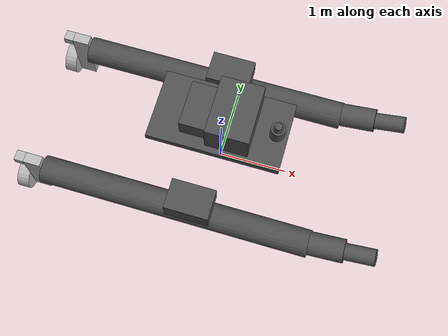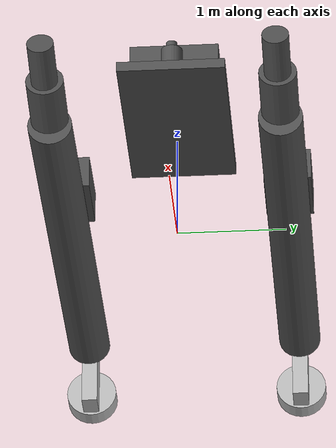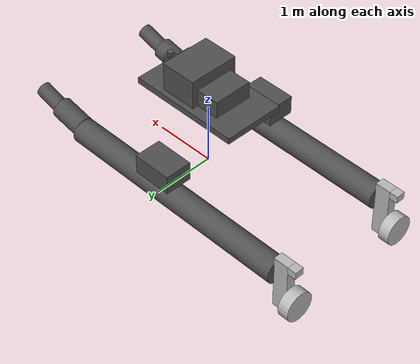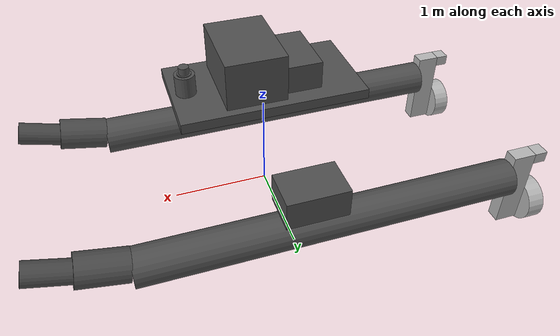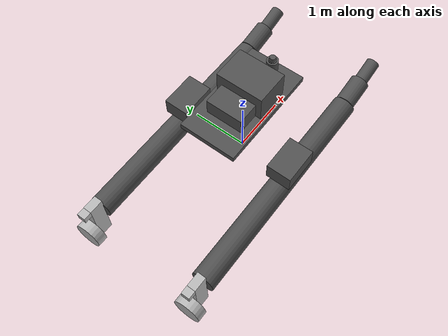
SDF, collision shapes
<sdf version='1.11'>
  <model name='wamv'>
    <link name='base_footprint'>
      <inertial>
        <pose>-0.010332621914388119 0 0.24583324608384011 0 0 0</pose>
        <mass>248.33000000000001</mass>
        <inertia>
          <ixx>224.52717583472031</ixx>
          <ixy>0</ixy>
          <ixz>-3.2359464261265258</ixz>
          <iyy>451.38310669015033</iyy>
          <iyz>0</iyz>
          <izz>502.93825152542979</izz>
        </inertia>
      </inertial>
      <collision name='base_footprint_fixed_joint_lump__base_link_collision'>
        <pose>0 0 1.25 0 0 0</pose>
        <geometry>
          <box>
            <size>1.8500000000000001 1 0.10000000000000001</size>
          </box>
        </geometry>
      </collision>
      <collision name='base_footprint_fixed_joint_lump__base_link_collision_1'>
        <pose>-0.40000000000000002 1.03 0.20000000000000001 0 1.5707963267948966 0</pose>
        <geometry>
          <cylinder>
            <length>4</length>
            <radius>0.20000000000000001</radius>
          </cylinder>
        </geometry>
      </collision>
      <collision name='base_footprint_fixed_joint_lump__base_link_collision_2'>
        <pose>1.8500000000000001 1.03 0.29999999999999999 0 1.3799999999999997 0</pose>
        <geometry>
          <cylinder>
            <length>0.5</length>
            <radius>0.17000000000000001</radius>
          </cylinder>
        </geometry>
      </collision>
      <collision name='base_footprint_fixed_joint_lump__base_link_collision_3'>
        <pose>2.2999999999999998 1.03 0.40000000000000002 0 1.3 0</pose>
        <geometry>
          <cylinder>
            <length>0.45000000000000001</length>
            <radius>0.12</radius>
          </cylinder>
        </geometry>
      </collision>
      <collision name='base_footprint_fixed_joint_lump__base_link_collision_4'>
        <pose>-0.40000000000000002 -1.03 0.20000000000000001 0 1.5707963267948966 0</pose>
        <geometry>
          <cylinder>
            <length>4</length>
            <radius>0.20000000000000001</radius>
          </cylinder>
        </geometry>
      </collision>
      <collision name='base_footprint_fixed_joint_lump__base_link_collision_5'>
        <pose>1.8500000000000001 -1.03 0.29999999999999999 0 1.3799999999999997 0</pose>
        <geometry>
          <cylinder>
            <length>0.5</length>
            <radius>0.17000000000000001</radius>
          </cylinder>
        </geometry>
      </collision>
      <collision name='base_footprint_fixed_joint_lump__base_link_collision_6'>
        <pose>2.2999999999999998 -1.03 0.40000000000000002 0 1.3 0</pose>
        <geometry>
          <cylinder>
            <length>0.45000000000000001</length>
            <radius>0.12</radius>
          </cylinder>
        </geometry>
      </collision>
      <collision name='base_footprint_fixed_joint_lump__battery_dx_link_collision_7'>
        <pose>-0.14999999999999999 -1.0289999999999999 0.60299999999999998 0 0 0</pose>
        <geometry>
          <box>
            <size>0.64000000000000001 0.44 0.31</size>
          </box>
        </geometry>
      </collision>
      <collision name='base_footprint_fixed_joint_lump__battery_sx_link_collision_8'>
        <pose>-0.14999999999999999 1.0289999999999999 0.60299999999999998 0 0 0</pose>
        <geometry>
          <box>
            <size>0.64000000000000001 0.44 0.31</size>
          </box>
        </geometry>
      </collision>
      <collision name='base_footprint_fixed_joint_lump__cpu_cases_link_collision_9'>
        <pose>0.17299999999999999 0 1.5349999999999999 0 0 0</pose>
        <geometry>
          <box>
            <size>0.59499999999999997 0.82999999999999996 0.46999999999999997</size>
          </box>
        </geometry>
        <surface>
          <contact>
            <ode/>
          </contact>
          <friction>
            <ode/>
          </friction>
        </surface>
      </collision>
      <collision name='base_footprint_fixed_joint_lump__cpu_cases_link_collision_10'>
        <pose>-0.314 0 1.4399999999999999 0 0 0</pose>
        <geometry>
          <box>
            <size>0.375 0.64000000000000001 0.28000000000000003</size>
          </box>
        </geometry>
        <surface>
          <contact>
            <ode/>
          </contact>
          <friction>
            <ode/>
          </friction>
        </surface>
      </collision>
      <collision name='base_footprint_fixed_joint_lump__tripod_legs_collision_collision_11'>
        <pose>0.77000000000000002 0 1.3999999999999999 0 0 0</pose>
        <geometry>
          <cylinder>
            <length>0.218</length>
            <radius>0.10000000000000001</radius>
          </cylinder>
        </geometry>
      </collision>
      <collision name='base_footprint_fixed_joint_lump__tripod_ring_collision_collision_12'>
        <pose>0.77000000000000002 0 1.5129999999999999 0 0 0</pose>
        <geometry>
          <cylinder>
            <length>0.01</length>
            <radius>0.068000000000000005</radius>
          </cylinder>
        </geometry>
      </collision>
      <collision name='base_footprint_fixed_joint_lump__lidar_collision_collision_13'>
        <pose>0.77000000000000002 0 1.554 0 0 0</pose>
        <geometry>
          <cylinder>
            <length>0.071999999999999995</length>
            <radius>0.051499999999999997</radius>
          </cylinder>
        </geometry>
      </collision>
      <visual name='base_footprint_fixed_joint_lump__base_link_visual'>
        <pose>0 0 0 0 0 0</pose>
        <geometry>
          <mesh>
            <scale>1 1 1</scale>
            <uri>model://wamv_gazebo/models/wam-v/meshes/WAM-V-Base.dae</uri>
          </mesh>
        </geometry>
      </visual>
      <visual name='base_footprint_fixed_joint_lump__battery_dx_link_visual_1'>
        <pose>-0.13 -1.0289999999999999 0.44800000000000001 0 0 0</pose>
        <geometry>
          <mesh>
            <scale>1 1 1</scale>
            <uri>model://wamv_gazebo/models/wam-v/meshes/battery.dae</uri>
          </mesh>
        </geometry>
      </visual>
      <visual name='base_footprint_fixed_joint_lump__battery_sx_link_visual_2'>
        <pose>-0.13 1.0289999999999999 0.44800000000000001 0 0 0</pose>
        <geometry>
          <mesh>
            <scale>1 1 1</scale>
            <uri>model://wamv_gazebo/models/wam-v/meshes/battery.dae</uri>
          </mesh>
        </geometry>
      </visual>
      <visual name='base_footprint_fixed_joint_lump__cpu_cases_link_visual_3'>
        <pose>0.072999999999999995 0 1.3 0 0 0</pose>
        <geometry>
          <mesh>
            <scale>1 1 1</scale>
            <uri>model://wamv_gazebo/models/wam-v/meshes/cpu_cases.dae</uri>
          </mesh>
        </geometry>
      </visual>
      <visual name='base_footprint_fixed_joint_lump__tripod_legs_visual_visual_4'>
        <pose>0.77000000000000002 0 1.29 0 0 0</pose>
        <geometry>
          <mesh>
            <scale>1 1 1</scale>
            <uri>model://wamv_gazebo/models/wam-v/meshes/legs.dae</uri>
          </mesh>
        </geometry>
        <material>
          <diffuse>0.3125 0.3125 0.3125 1</diffuse>
          <ambient>0.3125 0.3125 0.3125 1</ambient>
        </material>
      </visual>
      <visual name='base_footprint_fixed_joint_lump__tripod_ring_visual_visual_5'>
        <pose>0.77000000000000002 0 1.508 0 0 0</pose>
        <geometry>
          <mesh>
            <scale>1 1 1</scale>
            <uri>model://wamv_gazebo/models/wam-v/meshes/ring.dae</uri>
          </mesh>
        </geometry>
        <material>
          <diffuse>0.81249994 0.81249994 0.875 1</diffuse>
          <ambient>0.81249994 0.81249994 0.875 1</ambient>
        </material>
      </visual>
      <visual name='base_footprint_fixed_joint_lump__lidar_visual_visual_6'>
        <pose>0.77000000000000002 0 1.518 0 0 0</pose>
        <geometry>
          <mesh>
            <scale>1 1 1</scale>
            <uri>model://wamv_gazebo/models/wam-v/meshes/lidar_3d_v1.dae</uri>
          </mesh>
        </geometry>
      </visual>
      <sensor name='imu_sensor' type='imu'>
        <update_rate>100</update_rate>
        <visualize>true</visualize>
        <topic>imu</topic>
        <imu>
          <angular_velocity>
            <x>
              <noise type='gaussian'>
                <mean>0</mean>
                <stddev>0.0089999999999999993</stddev>
                <bias_mean>0.00075000000000000002</bias_mean>
                <bias_stddev>0.0050000000000000001</bias_stddev>
                <dynamic_bias_stddev>2.0000000000000002e-05</dynamic_bias_stddev>
                <dynamic_bias_correlation_time>400</dynamic_bias_correlation_time>
                <precision>0.00025000000000000001</precision>
              </noise>
            </x>
            <y>
              <noise type='gaussian'>
                <mean>0</mean>
                <stddev>0.0089999999999999993</stddev>
                <bias_mean>0.00075000000000000002</bias_mean>
                <bias_stddev>0.0050000000000000001</bias_stddev>
                <dynamic_bias_stddev>2.0000000000000002e-05</dynamic_bias_stddev>
                <dynamic_bias_correlation_time>400</dynamic_bias_correlation_time>
                <precision>0.00025000000000000001</precision>
              </noise>
            </y>
            <z>
              <noise type='gaussian'>
                <mean>0</mean>
                <stddev>0.0089999999999999993</stddev>
                <bias_mean>0.00075000000000000002</bias_mean>
                <bias_stddev>0.0050000000000000001</bias_stddev>
                <dynamic_bias_stddev>2.0000000000000002e-05</dynamic_bias_stddev>
                <dynamic_bias_correlation_time>400</dynamic_bias_correlation_time>
                <precision>0.00025000000000000001</precision>
              </noise>
            </z>
          </angular_velocity>
          <linear_acceleration>
            <x>
              <noise type='gaussian'>
                <mean>0</mean>
                <stddev>0.021000000000000001</stddev>
                <bias_mean>0.050000000000000003</bias_mean>
                <bias_stddev>0.0074999999999999997</bias_stddev>
                <dynamic_bias_stddev>0.00037500000000000001</dynamic_bias_stddev>
                <dynamic_bias_correlation_time>175</dynamic_bias_correlation_time>
                <precision>0.0050000000000000001</precision>
              </noise>
            </x>
            <y>
              <noise type='gaussian'>
                <mean>0</mean>
                <stddev>0.021000000000000001</stddev>
                <bias_mean>0.050000000000000003</bias_mean>
                <bias_stddev>0.0074999999999999997</bias_stddev>
                <dynamic_bias_stddev>0.00037500000000000001</dynamic_bias_stddev>
                <dynamic_bias_correlation_time>175</dynamic_bias_correlation_time>
                <precision>0.0050000000000000001</precision>
              </noise>
            </y>
            <z>
              <noise type='gaussian'>
                <mean>0</mean>
                <stddev>0.021000000000000001</stddev>
                <bias_mean>0.050000000000000003</bias_mean>
                <bias_stddev>0.0074999999999999997</bias_stddev>
                <dynamic_bias_stddev>0.00037500000000000001</dynamic_bias_stddev>
                <dynamic_bias_correlation_time>175</dynamic_bias_correlation_time>
                <precision>0.0050000000000000001</precision>
              </noise>
            </z>
          </linear_acceleration>
        </imu>
        <pose>0.072999999999999995 0 1.3 0 0 0</pose>
      </sensor>
      <sensor name='gpu_lidar' type='gpu_lidar'>
        <update_rate>5</update_rate>
        <topic>scan</topic>
        <always_on>true</always_on>
        <visualize>true</visualize>
        <ray>
          <scan>
            <horizontal>
              <samples>640</samples>
              <resolution>1</resolution>
              <min_angle>-1.396263</min_angle>
              <max_angle>1.396263</max_angle>
            </horizontal>
            <vertical>
              <samples>16</samples>
              <resolution>1</resolution>
              <min_angle>-0.26179000000000002</min_angle>
              <max_angle>0.26179000000000002</max_angle>
            </vertical>
          </scan>
          <range>
            <min>0.10000000000000001</min>
            <max>30</max>
            <resolution>0.01</resolution>
          </range>
          <noise>
            <type>gaussian</type>
            <mean>0</mean>
            <stddev>0.01</stddev>
          </noise>
        </ray>
        <pose>0.77000000000000002 0 1.554 0 0.139626 0</pose>
      </sensor>
      <sensor name='gps_sensor' type='gps'>
        <always_on>true</always_on>
        <update_rate>1</update_rate>
        <visualize>true</visualize>
        <topic>fix</topic>
        <gps>
          <position_sensing>
            <horizontal>
              <noise type='gaussian'>
                <mean>0</mean>
                <stddev>9.9999999999999995e-07</stddev>
              </noise>
            </horizontal>
            <vertical>
              <noise type='gaussian'>
                <mean>0</mean>
                <stddev>9.9999999999999995e-07</stddev>
              </noise>
            </vertical>
          </position_sensing>
        </gps>
        <pose>0.77000000000000002 0 1.518 0 0 0</pose>
      </sensor>
    </link>
    <joint name='left_chassis_engine_joint' type='revolute'>
      <pose relative_to='base_footprint'>-2.3737759999999999 1.0271349999999999 0.31823699999999999 0 0 0</pose>
      <parent>base_footprint</parent>
      <child>left_engine_link</child>
      <axis>
        <xyz>0 0 1</xyz>
        <limit>
          <lower>-1.5707899999999999</lower>
          <upper>1.5707899999999999</upper>
          <effort>10</effort>
          <velocity>10</velocity>
        </limit>
        <dynamics>
          <spring_reference>0</spring_reference>
          <spring_stiffness>0</spring_stiffness>
        </dynamics>
      </axis>
    </joint>
    <link name='left_engine_link'>
      <pose relative_to='left_chassis_engine_joint'>0 0 0 0 0 0</pose>
      <inertial>
        <pose>0 0 0 0 0 0</pose>
        <mass>15</mass>
        <inertia>
          <ixx>0.88924499999999995</ixx>
          <ixy>0</ixy>
          <ixz>0</ixz>
          <iyy>0.81112499999999998</iyy>
          <iyz>0</iyz>
          <izz>0.078125</izz>
        </inertia>
      </inertial>
      <collision name='left_engine_link_collision'>
        <pose>-0.14499999999999999 0 -0.27000000000000002 0 0 0</pose>
        <geometry>
          <box>
            <size>0.25 0.14999999999999999 0.90000000000000002</size>
          </box>
        </geometry>
      </collision>
      <collision name='left_engine_link_collision_1'>
        <pose>-0.34000000000000002 0 0.12 0 0 0</pose>
        <geometry>
          <box>
            <size>0.14000000000000001 0.14999999999999999 0.12</size>
          </box>
        </geometry>
      </collision>
      <visual name='left_engine_link_visual'>
        <pose>0 0 0 0 0 0</pose>
        <geometry>
          <mesh>
            <scale>1 1 1</scale>
            <uri>model://wamv_gazebo/models/wam-v/meshes/engine.dae</uri>
          </mesh>
        </geometry>
      </visual>
    </link>
    <joint name='left_engine_propeller_joint' type='revolute'>
      <pose relative_to='left_engine_link'>-0.27815600000000001 0 -0.50937100000000002 0 0 0</pose>
      <parent>left_engine_link</parent>
      <child>left_propeller_link</child>
      <axis>
        <xyz>1 0 0</xyz>
        <limit>
          <lower>-999999</lower>
          <upper>999999</upper>
          <effort>100</effort>
          <velocity>100</velocity>
        </limit>
        <dynamics>
          <damping>0.050000000000000003</damping>
          <friction>0.050000000000000003</friction>
          <spring_reference>0</spring_reference>
          <spring_stiffness>0</spring_stiffness>
        </dynamics>
      </axis>
    </joint>
    <link name='left_propeller_link'>
      <pose relative_to='left_engine_propeller_joint'>0 0 0 0 0 0</pose>
      <inertial>
        <pose>0 0 0 0 0 0</pose>
        <mass>0.5</mass>
        <inertia>
          <ixx>0.0085450000000000005</ixx>
          <ixy>0</ixy>
          <ixz>0</ixz>
          <iyy>0.0085450000000000005</iyy>
          <iyz>0</iyz>
          <izz>0.0144</izz>
        </inertia>
      </inertial>
      <collision name='left_propeller_link_collision'>
        <pose>-0.080000000000000002 0 0 0 1.5707963267948966 0</pose>
        <geometry>
          <cylinder>
            <length>0.17999999999999999</length>
            <radius>0.23999999999999999</radius>
          </cylinder>
        </geometry>
      </collision>
      <visual name='left_propeller_link_visual'>
        <pose>0 0 0 0 0 0</pose>
        <geometry>
          <mesh>
            <scale>1 1 1</scale>
            <uri>model://wamv_gazebo/models/wam-v/meshes/propeller.dae</uri>
          </mesh>
        </geometry>
      </visual>
    </link>
    <joint name='right_chassis_engine_joint' type='revolute'>
      <pose relative_to='base_footprint'>-2.3737759999999999 -1.0271349999999999 0.31823699999999999 0 0 0</pose>
      <parent>base_footprint</parent>
      <child>right_engine_link</child>
      <axis>
        <xyz>0 0 1</xyz>
        <limit>
          <lower>-1.5707899999999999</lower>
          <upper>1.5707899999999999</upper>
          <effort>10</effort>
          <velocity>10</velocity>
        </limit>
        <dynamics>
          <spring_reference>0</spring_reference>
          <spring_stiffness>0</spring_stiffness>
        </dynamics>
      </axis>
    </joint>
    <link name='right_engine_link'>
      <pose relative_to='right_chassis_engine_joint'>0 0 0 0 0 0</pose>
      <inertial>
        <pose>0 0 0 0 0 0</pose>
        <mass>15</mass>
        <inertia>
          <ixx>0.88924499999999995</ixx>
          <ixy>0</ixy>
          <ixz>0</ixz>
          <iyy>0.81112499999999998</iyy>
          <iyz>0</iyz>
          <izz>0.078125</izz>
        </inertia>
      </inertial>
      <collision name='right_engine_link_collision'>
        <pose>-0.14499999999999999 0 -0.27000000000000002 0 0 0</pose>
        <geometry>
          <box>
            <size>0.25 0.14999999999999999 0.90000000000000002</size>
          </box>
        </geometry>
      </collision>
      <collision name='right_engine_link_collision_1'>
        <pose>-0.34000000000000002 0 0.12 0 0 0</pose>
        <geometry>
          <box>
            <size>0.14000000000000001 0.14999999999999999 0.12</size>
          </box>
        </geometry>
      </collision>
      <visual name='right_engine_link_visual'>
        <pose>0 0 0 0 0 0</pose>
        <geometry>
          <mesh>
            <scale>1 1 1</scale>
            <uri>model://wamv_gazebo/models/wam-v/meshes/engine.dae</uri>
          </mesh>
        </geometry>
      </visual>
    </link>
    <joint name='right_engine_propeller_joint' type='revolute'>
      <pose relative_to='right_engine_link'>-0.27815600000000001 0 -0.50937100000000002 0 0 0</pose>
      <parent>right_engine_link</parent>
      <child>right_propeller_link</child>
      <axis>
        <xyz>1 0 0</xyz>
        <limit>
          <lower>-999999</lower>
          <upper>999999</upper>
          <effort>100</effort>
          <velocity>100</velocity>
        </limit>
        <dynamics>
          <damping>0.050000000000000003</damping>
          <friction>0.050000000000000003</friction>
          <spring_reference>0</spring_reference>
          <spring_stiffness>0</spring_stiffness>
        </dynamics>
      </axis>
    </joint>
    <link name='right_propeller_link'>
      <pose relative_to='right_engine_propeller_joint'>0 0 0 0 0 0</pose>
      <inertial>
        <pose>0 0 0 0 0 0</pose>
        <mass>0.5</mass>
        <inertia>
          <ixx>0.0085450000000000005</ixx>
          <ixy>0</ixy>
          <ixz>0</ixz>
          <iyy>0.0085450000000000005</iyy>
          <iyz>0</iyz>
          <izz>0.0144</izz>
        </inertia>
      </inertial>
      <collision name='right_propeller_link_collision'>
        <pose>-0.080000000000000002 0 0 0 1.5707963267948966 0</pose>
        <geometry>
          <cylinder>
            <length>0.17999999999999999</length>
            <radius>0.23999999999999999</radius>
          </cylinder>
        </geometry>
      </collision>
      <visual name='right_propeller_link_visual'>
        <pose>0 0 0 0 0 0</pose>
        <geometry>
          <mesh>
            <scale>1 1 1</scale>
            <uri>model://wamv_gazebo/models/wam-v/meshes/propeller.dae</uri>
          </mesh>
        </geometry>
      </visual>
    </link>
    <plugin name='gz::sim::systems::Thruster' filename='gz-sim-thruster-system'>
      <joint_name>left_engine_propeller_joint</joint_name>
      <thrust_coefficient>0.004422</thrust_coefficient>
      <fluid_density>1000</fluid_density>
      <propeller_diameter>0.2</propeller_diameter>
      <velocity_control>true</velocity_control>
    </plugin>
    <plugin name='gz::sim::systems::JointPositionController' filename='gz-sim-joint-position-controller-system'>
      <joint_name>left_chassis_engine_joint</joint_name>
      <use_velocity_commands>true</use_velocity_commands>
      <topic>/wamv/left/thruster/joint/cmd_pos</topic>
    </plugin>
    <plugin name='gz::sim::systems::Thruster' filename='gz-sim-thruster-system'>
      <joint_name>right_engine_propeller_joint</joint_name>
      <thrust_coefficient>0.004422</thrust_coefficient>
      <fluid_density>1000</fluid_density>
      <propeller_diameter>0.2</propeller_diameter>
      <velocity_control>true</velocity_control>
    </plugin>
    <plugin name='gz::sim::systems::JointPositionController' filename='gz-sim-joint-position-controller-system'>
      <joint_name>right_chassis_engine_joint</joint_name>
      <use_velocity_commands>true</use_velocity_commands>
      <topic>/wamv/right/thruster/joint/cmd_pos</topic>
    </plugin>
    <plugin name='wamv_gazebo::Surface' filename='libSurface.so'>
      <link_name>base_link</link_name>
      <hull_length>4.9</hull_length>
      <hull_radius>0.213</hull_radius>
      <fluid_level>0</fluid_level>
      <points>
        <point>0.6 1.03 0</point>
        <point>-1.4 1.03 0</point>
      </points>
      <wavefield>
        <topic>/wamv_gazebo/wavefield/parameters</topic>
      </wavefield>
    </plugin>
    <plugin name='wamv_gazebo::Surface' filename='libSurface.so'>
      <link_name>base_link</link_name>
      <hull_length>4.9</hull_length>
      <hull_radius>0.213</hull_radius>
      <fluid_level>0</fluid_level>
      <points>
        <point>0.6 -1.03 0</point>
        <point>-1.4 -1.03 0</point>
      </points>
      <wavefield>
        <topic>/wamv_gazebo/wavefield/parameters</topic>
      </wavefield>
    </plugin>
    <plugin name='gz::sim::systems::Hydrodynamics' filename='gz-sim-hydrodynamics-system'>
      <link_name>base_link</link_name>
      <xDotU>0.0</xDotU>
      <yDotV>0.0</yDotV>
      <nDotR>0.0</nDotR>
      <xU>-51.3</xU>
      <xAbsU>-72.4</xAbsU>
      <yV>-40.0</yV>
      <yAbsV>0.0</yAbsV>
      <zW>-500.0</zW>
      <kP>-50.0</kP>
      <mQ>-50.0</mQ>
      <nR>-400.0</nR>
      <nAbsR>0.0</nAbsR>
    </plugin>
    <plugin name='gz::sim::systems::OdometryPublisher' filename='libgz-sim-odometry-publisher-system.so'>
      <odom_topic>odom</odom_topic>
      <frame_id>odom</frame_id>
      <child_frame_id>base_footprint</child_frame_id>
      <tf_topic>tf</tf_topic>
      <publish_tf>true</publish_tf>
      <odom_publish_frequency>30</odom_publish_frequency>
    </plugin>
    <frame name='battery_dx_joint' attached_to='base_link'>
      <pose>-0.13 -1.0289999999999999 0.44800000000000001 0 0 0</pose>
    </frame>
    <frame name='battery_dx_link' attached_to='battery_dx_joint'>
      <pose>0 0 0 0 0 0</pose>
    </frame>
    <frame name='battery_sx_joint' attached_to='base_link'>
      <pose>-0.13 1.0289999999999999 0.44800000000000001 0 0 0</pose>
    </frame>
    <frame name='battery_sx_link' attached_to='battery_sx_joint'>
      <pose>0 0 0 0 0 0</pose>
    </frame>
    <frame name='cpu_cases_joint' attached_to='base_link'>
      <pose>0.072999999999999995 0 1.3 0 0 0</pose>
    </frame>
    <frame name='cpu_cases_link' attached_to='cpu_cases_joint'>
      <pose>0 0 0 0 0 0</pose>
    </frame>
    <frame name='lidar_joint' attached_to='tripod_ring_link'>
      <pose>0 0 0.01 0 0 0</pose>
    </frame>
    <frame name='lidar_link' attached_to='lidar_joint'>
      <pose>0 0 0 0 0 0</pose>
    </frame>
    <frame name='tripod_ring_joint' attached_to='tripod_legs_link'>
      <pose>0 0 0.218 0 0 0</pose>
    </frame>
    <frame name='tripod_ring_link' attached_to='tripod_ring_joint'>
      <pose>0 0 0 0 0 0</pose>
    </frame>
    <frame name='tripod_legs_joint' attached_to='base_link'>
      <pose>0.77000000000000002 0 1.29 0 0 0</pose>
    </frame>
    <frame name='tripod_legs_link' attached_to='tripod_legs_joint'>
      <pose>0 0 0 0 0 0</pose>
    </frame>
    <frame name='base_footprint_joint' attached_to='base_footprint'>
      <pose>0 0 0 0 0 0</pose>
    </frame>
    <frame name='base_link' attached_to='base_footprint_joint'>
      <pose>0 0 0 0 0 0</pose>
    </frame>
  </model>
</sdf>
